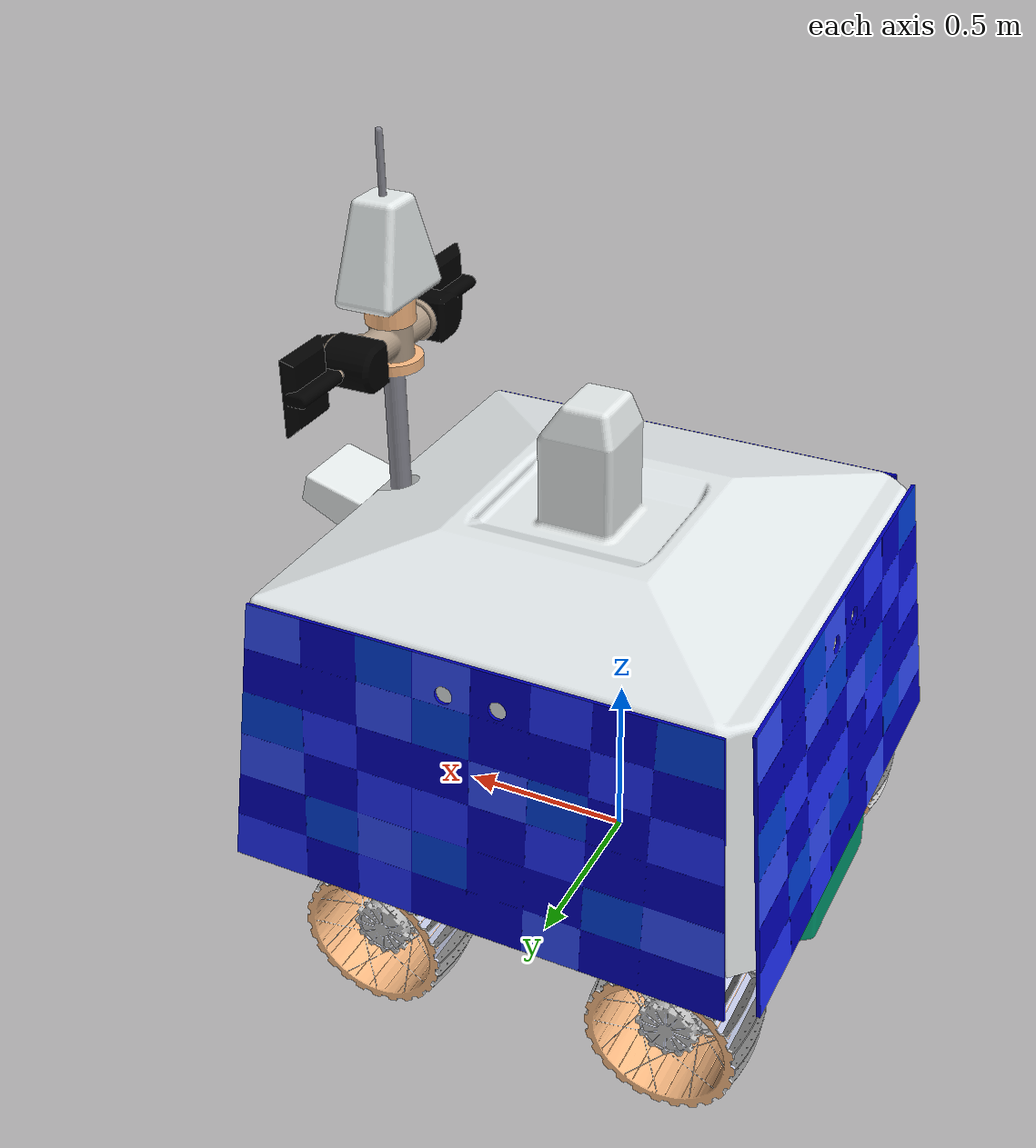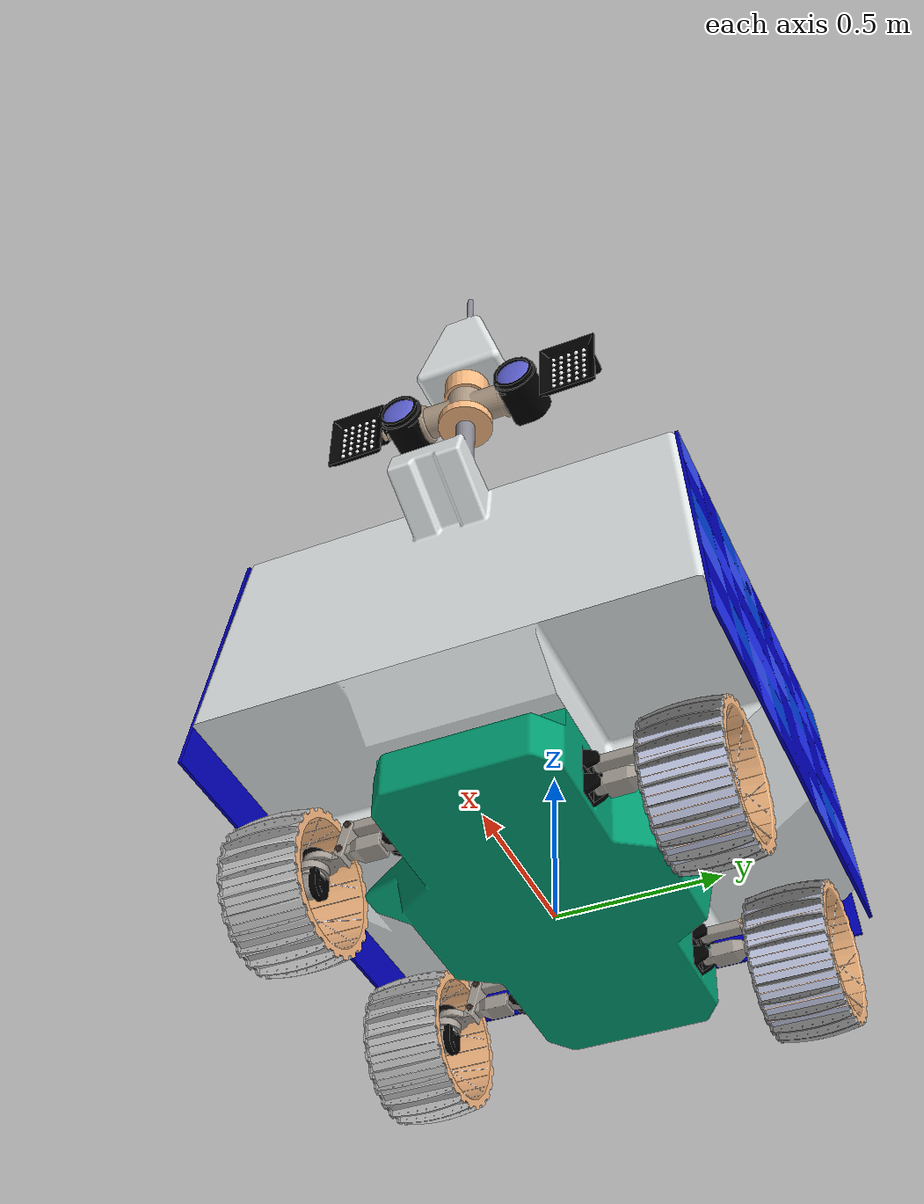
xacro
<?xml version="1.0"?>
<robot name="lunar_pole_exploration_rover" xmlns:xacro="http://wiki.ros.org/xacro">

    <!-- Inertia matrices -->
	<xacro:include filename="$(find simulation)/models/lunar_pole_exploration_rover/urdf/macros.xacro" />
	<!-- Robot constants and properties -->
	<xacro:include filename="$(find simulation)/models/lunar_pole_exploration_rover/urdf/lunar_pole_exploration_rover_properties.xacro" />
	<!-- Gazebo aspects of the robot -->
	<xacro:include filename="$(find simulation)/models/lunar_pole_exploration_rover/urdf/lunar_pole_exploration_rover.gazebo" />
	<!-- Chasis -->
	<xacro:include filename="$(find simulation)/models/lunar_pole_exploration_rover/urdf/chassis.xacro" />
	<!-- Wheel Groups -->
	<xacro:include filename="$(find simulation)/models/lunar_pole_exploration_rover/urdf/wheel.xacro" />
	<xacro:include filename="$(find simulation)/models/lunar_pole_exploration_rover/urdf/wheel_assembly.xacro" />
	<!-- Mast -->
	<xacro:include filename="$(find simulation)/models/lunar_pole_exploration_rover/urdf/mast_head.xacro" />

	<xacro:chassis_body/>
	<xacro:wheel_assembly
        placement="front"
        side="left"
        tX="1"
        tY="1"/>
	<xacro:wheel_assembly
        placement="rear"
        side="left"
        tX="-1"
        tY="1"/>
	<xacro:wheel_assembly
        placement="front"
        side="right"
        tX="1"
        tY="-1"/>
	<xacro:wheel_assembly
        placement="rear"
        side="right"
        tX="-1"
        tY="-1"/>
	<xacro:mast_head/>

</robot>

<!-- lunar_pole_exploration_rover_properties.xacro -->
<robot xmlns:xacro="http://wiki.ros.org/xacro">

	<!-- Constants -->
	<xacro:property name="PI" value="3.1415926535897931"/>

	<!-- Scaling -->
	<xacro:property name="scale_XYZ" value="1.0"/>

	<!-- Chassis properties -->
	<xacro:property name="chassisMass" value="250.0"/>
	<xacro:property name="chassisHeight" value="0.207"/>
	<xacro:property name="chassisLength" value="1.380"/>
	<xacro:property name="chassisWidth" value="1.200"/>

	<!-- Body properties -->
	<xacro:property name="bodyMass" value="100.0"/>
	<xacro:property name="bodyHeight" value="0.900"/>
	<xacro:property name="bodyLength" value="1.525"/>
	<xacro:property name="bodyWidth" value="1.525"/>
	<xacro:property name="solarPanelMass" value="1.0"/>
	<xacro:property name="solarPanelHeight" value="0.001"/>
	<xacro:property name="solarPanelLength" value="0.800"/>
	<xacro:property name="solarPanelWidth" value="1.450"/>

	<!-- Wheel Assembly -->
	<xacro:property name="suspensionMass" value="1.5"/>
	<xacro:property name="suspensionWidth" value="0.090"/>
	<xacro:property name="suspensionLength" value="0.345"/>
	<xacro:property name="suspensionHeight" value="0.145"/>
	<xacro:property name="suspensionComX" value="0.0"/>
	<xacro:property name="suspensionComY" value="0.09"/>
	<xacro:property name="suspensionComZ" value="-0.009"/>

	<xacro:property name="suspension_lower_limit" value="-0.0115"/>
	<xacro:property name="suspension_upper_limit" value="0.0115"/>
	<xacro:property name="suspension_damping" value="1000.0"/>
	<xacro:property name="suspension_friction" value="1000.0"/>
	<xacro:property name="suspension_stiffness" value="200000.0"/>

	<xacro:property name="axleHeight" value="0.182"/>
	<xacro:property name="axleWidth" value="0.1435"/>
	<xacro:property name="axleLength" value="0.100"/>
	<xacro:property name="axleMass" value="0.7"/>
	<xacro:property name="axleComX" value="0.0"/>
	<xacro:property name="axleComY" value="0.048"/>
	<xacro:property name="axleComZ" value="0.026"/>

	<xacro:property name="suspension_steer_limit" value="0.9"/>
	<xacro:property name="suspension_steer_effort" value="100000.0"/>
	<xacro:property name="suspension_steer_velocity" value="1000.0"/>

	<!-- Wheels properties -->
	<xacro:property name="wheelWidth" value="0.240"/>
	<xacro:property name="wheelRadius" value="0.225"/>
	<xacro:property name="wheelMass" value="1.0"/>

	<!-- Mast -->
	<xacro:property name="mastHeadMass" value="3.0"/>

	<xacro:property name="mastHeadPivotMass" value="${mastHeadMass/2}"/>
	<xacro:property name="mastHeadPivotWidth" value="0.120"/>
	<xacro:property name="mastHeadPivotLength" value="0.280"/>
	<xacro:property name="mastHeadPivotHeight" value="0.120"/>

	<xacro:property name="mastCameraMass" value="${mastHeadMass/2}"/>
	<xacro:property name="mastCameraWidth" value="0.168"/>
	<xacro:property name="mastCameraLength" value="0.520"/>
	<xacro:property name="mastCameraHeight" value="0.130"/>

	<xacro:property name="mast_camera_pan_limit" value="3.490659"/>
	<xacro:property name="mast_camera_pan_effort" value="50000.0"/>
	<xacro:property name="mast_camera_pan_velocity" value="4.0"/>

	<xacro:property name="mast_camera_tilt_limit" value="1.308997"/>
	<xacro:property name="mast_camera_tilt_effort" value="50000.0"/>
	<xacro:property name="mast_camera_tilt_velocity" value="3.0"/>

</robot>

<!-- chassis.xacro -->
<robot xmlns:xacro="http://wiki.ros.org/xacro">

  <xacro:macro name="chassis_body" params="">

    <!-- Used for fixing robot to Gazebo 'chassis' -->
	<link name="base_footprint" />
	<link name="base_link" />

	<joint name="base_footprint_to_link" type="fixed">
		<parent link="base_footprint"/>
		<child link="base_link"/>
	</joint>

	<joint name="base_to_chassis" type="fixed">
		<parent link="base_link"/>
		<child link="chassis"/>
		<origin rpy="0 0 0" xyz="0 0 0"/>
	</joint>

	<link name='chassis'>
		<collision>
			<origin xyz="0 0 0"
					rpy="0 0 0"/>
			<geometry>
				<mesh filename="package://simulation/models/lunar_pole_exploration_rover/meshes/chassis.dae" scale="${scale_XYZ} ${scale_XYZ} ${scale_XYZ}"/>
			</geometry>
		</collision>
		<visual>
			<origin xyz="0 0 0"
					rpy="0 0 0"/>
			<geometry>
				<mesh filename="package://simulation/models/lunar_pole_exploration_rover/meshes/chassis.dae" scale="${scale_XYZ} ${scale_XYZ} ${scale_XYZ}"/>
			</geometry>
		</visual>
		<inertial>
			<origin xyz="0 0 ${chassisHeight/2}"
					rpy="0 0 0"/>
			<mass value="${chassisMass}"/>
			<xacro:box_inertia
				m="${chassisMass}"
				x="${chassisWidth*scale_XYZ}"
				y="${chassisLength*scale_XYZ}"
				z="${chassisHeight*scale_XYZ}"/>
		</inertial>
	</link>

		<link name='body'>
		<collision>
			<origin xyz="0 0 0"
					rpy="0 0 0"/>
			<geometry>
				<mesh filename="package://simulation/models/lunar_pole_exploration_rover/meshes/body.dae" scale="${scale_XYZ} ${scale_XYZ} ${scale_XYZ}"/>
			</geometry>
		</collision>
		<visual>
			<origin xyz="0 0 0"
					rpy="0 0 0"/>
			<geometry>
				<mesh filename="package://simulation/models/lunar_pole_exploration_rover/meshes/body.dae" scale="${scale_XYZ} ${scale_XYZ} ${scale_XYZ}"/>
			</geometry>
		</visual>
		<inertial>
			<origin xyz="0 0 0"
					rpy="0 0 0"/>
			<mass value="${bodyMass}"/>
			<xacro:box_inertia
				m="${bodyMass}"
				x="${bodyWidth*scale_XYZ}"
				y="${bodyLength*scale_XYZ}"
				z="${bodyHeight*scale_XYZ}"/>
		</inertial>
	</link>

	<joint name="chassis_body_joint" type="fixed">
    <parent link="chassis"/>
    <child link="body"/>
    <origin xyz="0.07 0.0 0.207" rpy="0 0 0"/>
  </joint>

	<link name='left_solar_panel'>
		<collision>
			<origin xyz="0 0 0"
					rpy="0 0 0"/>
			<geometry>
				<mesh filename="package://simulation/models/lunar_pole_exploration_rover/meshes/solar_panel.dae" scale="${scale_XYZ} ${scale_XYZ} ${scale_XYZ}"/>
			</geometry>
		</collision>
		<visual>
			<origin xyz="0 0 0"
					rpy="0 0 0"/>
			<geometry>
				<mesh filename="package://simulation/models/lunar_pole_exploration_rover/meshes/solar_panel.dae" scale="${scale_XYZ} ${scale_XYZ} ${scale_XYZ}"/>
			</geometry>
		</visual>
		<inertial>
			<origin xyz="0 0 0"
					rpy="0 0 0"/>
			<mass value="${solarPanelMass}"/>
			<xacro:box_inertia
				m="${solarPanelMass}"
				x="${solarPanelWidth*scale_XYZ}"
				y="${solarPanelLength*scale_XYZ}"
				z="${solarPanelHeight*scale_XYZ}"/>
		</inertial>
	</link>

	<link name='right_solar_panel'>
		<collision>
			<origin xyz="0 0 0"
					rpy="0 0 0"/>
			<geometry>
				<mesh filename="package://simulation/models/lunar_pole_exploration_rover/meshes/solar_panel.dae" scale="${scale_XYZ} ${scale_XYZ} ${scale_XYZ}"/>
			</geometry>
		</collision>
		<visual>
			<origin xyz="0 0 0"
					rpy="0 0 0"/>
			<geometry>
				<mesh filename="package://simulation/models/lunar_pole_exploration_rover/meshes/solar_panel.dae" scale="${scale_XYZ} ${scale_XYZ} ${scale_XYZ}"/>
			</geometry>
		</visual>
		<inertial>
			<origin xyz="0 0 0"
					rpy="0 0 0"/>
			<mass value="${solarPanelMass}"/>
			<xacro:box_inertia
				m="${solarPanelMass}"
				x="${solarPanelWidth*scale_XYZ}"
				y="${solarPanelLength*scale_XYZ}"
				z="${solarPanelHeight*scale_XYZ}"/>
		</inertial>
	</link>

	<link name='rear_solar_panel'>
		<collision>
			<origin xyz="0 0 0"
					rpy="0 0 0"/>
			<geometry>
				<mesh filename="package://simulation/models/lunar_pole_exploration_rover/meshes/solar_panel.dae" scale="${scale_XYZ} ${scale_XYZ} ${scale_XYZ}"/>
			</geometry>
		</collision>
		<visual>
			<origin xyz="0 0 0"
					rpy="0 0 0"/>
			<geometry>
				<mesh filename="package://simulation/models/lunar_pole_exploration_rover/meshes/solar_panel.dae" scale="${scale_XYZ} ${scale_XYZ} ${scale_XYZ}"/>
			</geometry>
		</visual>
		<inertial>
			<origin xyz="0 0 0"
					rpy="0 0 0"/>
			<mass value="${solarPanelMass}"/>
			<xacro:box_inertia
				m="${solarPanelMass}"
				x="${solarPanelWidth*scale_XYZ}"
				y="${solarPanelLength*scale_XYZ}"
				z="${solarPanelHeight*scale_XYZ}"/>
		</inertial>
	</link>

	<!-- joint is not of fixed type to avoid "lumping" from some URDF parsers
	The joint visual need to be independant for the solar panel plugin to work -->
	<joint name="left_solar_panel_joint" type="revolute">
		<parent link="body"/>
		<child link="left_solar_panel"/>
		<origin xyz="0.0252 0.7253 0.3829" rpy="1.4673 0 ${-PI}"/>
		<axis xyz="0 0 1"/>
		<limit lower="0.0" upper="0.0" effort="1e10" velocity="0.0"/>
	</joint>

	<!-- joint is not of fixed type to avoid "lumping" from some URDF parsers
	The joint visual need to be independant for the solar panel plugin to work -->
	<joint name="right_solar_panel_joint" type="revolute">
		<parent link="body"/>
		<child link="right_solar_panel"/>
		<origin xyz="0.0252 -0.7253 0.3829" rpy="1.4673 0 0"/>
		<axis xyz="0 0 1"/>
		<limit lower="0.0" upper="0.0" effort="1e10" velocity="0.0"/>
	</joint>

	<!-- joint is not of fixed type to avoid "lumping" from some URDF parsers
	The joint visual need to be independant for the solar panel plugin to work -->
	<joint name="rear_solar_panel_joint" type="revolute">
		<parent link="body"/>
		<child link="rear_solar_panel"/>
		<origin xyz="-0.7253 0.0 0.3829" rpy="1.4673 0 ${-PI/2}"/>
		<axis xyz="0 0 1"/>
		<limit lower="0.0" upper="0.0" effort="1e10" velocity="0.0"/>
	</joint>

	<material name="camera_green">
		<color rgba="0 0.8 0 1"/>
	</material>

	<link name="aft_camera_link_left">
		<!-- Inertial for gazebo to take it into account, Put 1gr weight -->
		<inertial>
			<origin xyz="0 0 0" rpy="0 0 0"/>
			<mass value="0.001" />
			<inertia ixx="9.1875e-09" ixy="0.0" ixz="0.0" iyy="9.1875e-09" iyz="0.0" izz="1.378125e-08"/>
		</inertial>
		<visual>
			<origin rpy="0.0 0 0" xyz="0 0 0"/>
			<geometry>
				<box size="0.0005 0.0005 0.0005"/>
			</geometry>
			<material name="camera_green"/>
		</visual>
	</link>

	<gazebo reference="aft_camera_link_left">
		<material>Gazebo/Green</material>
	</gazebo>

	<joint name="aft_camera_link_left_joint" type="fixed">
		<parent link="body"/>
		<child link="aft_camera_link_left"/>
		<origin xyz="-0.705 -0.150 0.682" rpy="0 0 ${PI}"/>
	</joint>

	<link name="aft_camera_link_right">
		<!-- Inertial for gazebo to take it into account, Put 1gr weight -->
		<inertial>
			<origin xyz="0 0 0" rpy="0 0 0"/>
			<mass value="0.001" />
			<inertia ixx="9.1875e-09" ixy="0.0" ixz="0.0" iyy="9.1875e-09" iyz="0.0" izz="1.378125e-08"/>
		</inertial>
		<visual>
			<origin rpy="0.0 0 0" xyz="0 0 0"/>
			<geometry>
				<box size="0.0005 0.0005 0.0005"/>
			</geometry>
			<material name="camera_green"/>
		</visual>
	</link>

	<gazebo reference="aft_camera_link_right">
		<material>Gazebo/Green</material>
	</gazebo>

	<joint name="aft_camera_link_right_joint" type="fixed">
		<parent link="body"/>
		<child link="aft_camera_link_right"/>
		<origin xyz="-0.705 0.150 0.682" rpy="0 0 ${PI}"/>
	</joint>

	<link name="haz_camera_link_left_front">
		<!-- Inertial for gazebo to take it into account, Put 1gr weight -->
		<inertial>
			<origin xyz="0 0 0" rpy="0 0 0"/>
			<mass value="0.001" />
			<inertia ixx="9.1875e-09" ixy="0.0" ixz="0.0" iyy="9.1875e-09" iyz="0.0" izz="1.378125e-08"/>
		</inertial>
		<visual>
			<origin rpy="0.0 0 0" xyz="0 0 0"/>
			<geometry>
				<box size="0.0005 0.0005 0.0005"/>
			</geometry>
			<material name="camera_green"/>
		</visual>
	</link>

	<gazebo reference="haz_camera_link_left_front">
		<material>Gazebo/Green</material>
	</gazebo>

	<joint name="haz_camera_link_left_front_joint" type="fixed">
		<parent link="body"/>
		<child link="haz_camera_link_left_front"/>
		<origin xyz="0.270 0.310 0.110" rpy="0 ${PI/4} ${PI/4}"/>
	</joint>

	<link name="haz_camera_link_left_rear">
		<!-- Inertial for gazebo to take it into account, Put 1gr weight -->
		<inertial>
			<origin xyz="0 0 0" rpy="0 0 0"/>
			<mass value="0.001" />
			<inertia ixx="9.1875e-09" ixy="0.0" ixz="0.0" iyy="9.1875e-09" iyz="0.0" izz="1.378125e-08"/>
		</inertial>
		<visual>
			<origin rpy="0.0 0 0" xyz="0 0 0"/>
			<geometry>
				<box size="0.0005 0.0005 0.0005"/>
			</geometry>
			<material name="camera_green"/>
		</visual>
	</link>

	<gazebo reference="haz_camera_link_left_rear">
		<material>Gazebo/Green</material>
	</gazebo>

	<joint name="haz_camera_link_left_rear_joint" type="fixed">
		<parent link="body"/>
		<child link="haz_camera_link_left_rear"/>
		<origin xyz="-0.270 0.310 0.110" rpy="0 ${PI/4} ${PI/4 + PI/2}"/>
	</joint>

		<link name="haz_camera_link_right_front">
		<!-- Inertial for gazebo to take it into account, Put 1gr weight -->
		<inertial>
			<origin xyz="0 0 0" rpy="0 0 0"/>
			<mass value="0.001" />
			<inertia ixx="9.1875e-09" ixy="0.0" ixz="0.0" iyy="9.1875e-09" iyz="0.0" izz="1.378125e-08"/>
		</inertial>
		<visual>
			<origin rpy="0.0 0 0" xyz="0 0 0"/>
			<geometry>
				<box size="0.0005 0.0005 0.0005"/>
			</geometry>
			<material name="camera_green"/>
		</visual>
	</link>

	<gazebo reference="haz_camera_link_right_front">
		<material>Gazebo/Green</material>
	</gazebo>

	<joint name="haz_camera_link_right_front_joint" type="fixed">
		<parent link="body"/>
		<child link="haz_camera_link_right_front"/>
		<origin xyz="0.270 -0.310 0.110" rpy="0 ${PI/4} ${-PI/4}"/>
	</joint>

		<link name="haz_camera_link_right_rear">
		<!-- Inertial for gazebo to take it into account, Put 1gr weight -->
		<inertial>
			<origin xyz="0 0 0" rpy="0 0 0"/>
			<mass value="0.001" />
			<inertia ixx="9.1875e-09" ixy="0.0" ixz="0.0" iyy="9.1875e-09" iyz="0.0" izz="1.378125e-08"/>
		</inertial>
		<visual>
			<origin rpy="0.0 0 0" xyz="0 0 0"/>
			<geometry>
				<box size="0.0005 0.0005 0.0005"/>
			</geometry>
			<material name="camera_green"/>
		</visual>
	</link>

	<gazebo reference="haz_camera_link_right_rear">
		<material>Gazebo/Green</material>
	</gazebo>

	<joint name="haz_camera_link_right_rear_joint" type="fixed">
		<parent link="body"/>
		<child link="haz_camera_link_right_rear"/>
		<origin xyz="-0.270 -0.310 0.110" rpy="0 ${PI/4} ${-PI/4 - PI/2}"/>
	</joint>

  </xacro:macro>
</robot>

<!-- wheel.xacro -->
<robot xmlns:xacro="http://wiki.ros.org/xacro">

  <xacro:macro name="wheel" params="wheel_name wheel_conector_name side tY">
    <!-- tY is 1 if left side, -1 if right side -->
    <link name='${wheel_name}'>
			<collision>
				<origin xyz="0 0 0"
						rpy="1.57 0 0"/>
				<geometry>
					<cylinder radius="${wheelRadius}" length="${wheelWidth}"/>
				</geometry>
				<surface>
					<friction>
						<ode>
							<mu>1.0</mu>
							<mu2>1.0</mu2>
						</ode>
					</friction>
				</surface>
			</collision>

			<visual>
				<origin xyz="0 0 0"
						rpy="0 0 0"/>
				<geometry>
					<mesh filename="package://simulation/models/lunar_pole_exploration_rover/meshes/wheel_${side}.dae" scale="${scale_XYZ} ${scale_XYZ} ${scale_XYZ}"/>
				</geometry>
			</visual>

			<inertial>
				<origin xyz="0 0 0"
						rpy="0 0 0"/>
				<mass value="${wheelMass}"/>
				<xacro:cylinder_inertia
					m="${wheelMass}"
					r="${wheelRadius*scale_XYZ}"
					h="${wheelWidth*scale_XYZ}"/>
			</inertial>
		</link>

	  <gazebo reference="${wheel_name}">
	    <kp  value="10000000.0" />
	    <kd>100.0</kd>
	    <minDepth>0.001</minDepth>
	    <maxVel>1.0</maxVel>
	  </gazebo>

	  <joint name="${wheel_name}_joint" type="continuous">
			<parent link="${wheel_conector_name}"/>
			<child link="${wheel_name}"/>
			<origin xyz="0 ${tY*0.076} 0" rpy="0 0 0"/>
			<limit effort="10000.0" velocity="100.0"/>
	        <axis xyz="0 1 0"/>
	        <dynamics damping="0.0" friction="0.0"/>
		</joint>

    <transmission name="${wheel_name}_trans">
      <type>transmission_interface/SimpleTransmission</type>
      <joint name="${wheel_name}_joint">
        <hardwareInterface>hardware_interface/EffortJointInterface</hardwareInterface>
      </joint>
      <actuator name="${wheel_name}Motor">
        <hardwareInterface>hardware_interface/EffortJointInterface</hardwareInterface>
        <mechanicalReduction>1</mechanicalReduction>
      </actuator>
    </transmission>

  </xacro:macro>

</robot>

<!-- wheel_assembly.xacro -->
<robot xmlns:xacro="http://wiki.ros.org/xacro">

  <xacro:macro name="wheel_assembly" params="placement side tX tY">
    <!-- placement is either or rear -->
    <!-- side is either left side or right side -->
    <!-- tX is either 1 for front or -1 for rear -->
    <!-- tY is either 1 for ${side} side or -1 for right side -->

    <link name='${placement}_${side}_suspension'>
        <collision>
          <origin xyz="0 0 0"
              rpy="0 0 0"/>
          <geometry>
            <mesh filename="package://simulation/models/lunar_pole_exploration_rover/meshes/suspension_${side}.dae" scale="${scale_XYZ} ${scale_XYZ} ${scale_XYZ}"/>
          </geometry>
        </collision>
        <visual>
          <origin xyz="0 0 0"
              rpy="0 0 0"/>
          <geometry>
            <mesh filename="package://simulation/models/lunar_pole_exploration_rover/meshes/suspension_${side}.dae" scale="${scale_XYZ} ${scale_XYZ} ${scale_XYZ}"/>
          </geometry>
        </visual>
        <inertial>
          <origin xyz="${tY*suspensionComX*scale_XYZ} ${tY*suspensionComY*scale_XYZ} ${tY*suspensionComZ*scale_XYZ}"
              rpy="0 0 0"/>
          <mass value="${suspensionMass}"/>
          <xacro:box_inertia
            m="${suspensionMass}"
            x="${suspensionWidth*scale_XYZ}"
            y="${suspensionLength*scale_XYZ}"
            z="${suspensionHeight*scale_XYZ}"/>
        </inertial>
      </link>

      <joint name="${placement}_${side}_suspension_joint" type="prismatic">
        <parent link="chassis"/>
        <child link="${placement}_${side}_suspension"/>
        <origin xyz="${tX*0.435} ${tY*0.255} 0.09" rpy="0 0 0"/>
        <limit lower="${suspension_lower_limit}" upper="${suspension_upper_limit}" effort="10000.0" velocity="100.0"/>
        <axis xyz="0 0 1"/>
        <dynamics damping="${suspension_damping}" friction="${suspension_friction}" spring_stiffness="${suspension_stiffness}"/>
      </joint>

      <link name='${placement}_${side}_wheel_axle'>
        <collision>
          <origin xyz="0 0 0"
              rpy="0 0 0"/>
          <geometry>
            <mesh filename="package://simulation/models/lunar_pole_exploration_rover/meshes/wheel_axle_${side}.dae" scale="${scale_XYZ} ${scale_XYZ} ${scale_XYZ}"/>
          </geometry>
        </collision>
        <visual>
          <origin xyz="0 0 0"
              rpy="0 0 0"/>
          <geometry>
            <mesh filename="package://simulation/models/lunar_pole_exploration_rover/meshes/wheel_axle_${side}.dae" scale="${scale_XYZ} ${scale_XYZ} ${scale_XYZ}"/>
          </geometry>
        </visual>

        <inertial>
          <origin xyz="${axleComX*scale_XYZ} ${axleComY*scale_XYZ} ${axleComZ*scale_XYZ}"
              rpy="0 0 0"/>
          <mass value="${axleMass}"/>
          <xacro:box_inertia
            m="${axleMass}"
            x="${axleWidth*scale_XYZ}"
            y="${axleLength*scale_XYZ}"
            z="${axleHeight*scale_XYZ}"/>
        </inertial>
      </link>

      <joint name="${placement}_${side}_wheel_axle_joint" type="revolute">
        <parent link="${placement}_${side}_suspension"/>
        <child link="${placement}_${side}_wheel_axle"/>
        <origin xyz="0.0 ${tY*0.27} -0.1265" rpy="0 0 0"/>
        <axis xyz="0 0 1"/>
        <limit lower="${-suspension_steer_limit}" upper="${suspension_steer_limit}" effort="${suspension_steer_effort}" velocity="${suspension_steer_velocity}"/>
      </joint>

      <transmission name="${placement}_${side}_wheel_steer_trans">
        <type>transmission_interface/SimpleTransmission</type>
        <joint name="${placement}_${side}_wheel_axle_joint">
          <hardwareInterface>hardware_interface/EffortJointInterface</hardwareInterface>
        </joint>
        <actuator name="${placement}_${side}_wheel_steerMotor">
          <hardwareInterface>hardware_interface/EffortJointInterface</hardwareInterface>
          <mechanicalReduction>1</mechanicalReduction>
        </actuator>
      </transmission>

      <xacro:wheel
        wheel_name="${placement}_${side}_wheel"
        wheel_conector_name="${placement}_${side}_wheel_axle"
        side="${side}"
        tY="${tY}"/>

  </xacro:macro>

</robot>

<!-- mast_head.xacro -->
<robot xmlns:xacro="http://wiki.ros.org/xacro">
    <xacro:macro name="mast_head" params="">
        <link name='mast_head_pivot'>
            <collision>
                <origin xyz="0 0 0"
                    rpy="0 0 0"/>
                <geometry>
                    <mesh filename="package://simulation/models/lunar_pole_exploration_rover/meshes/mast_head_pivot.dae" scale="${scale_XYZ} ${scale_XYZ} ${scale_XYZ}"/>
                </geometry>
            </collision>
            <visual>
                <origin xyz="0 0 0"
                    rpy="0 0 0"/>
                <geometry>
                    <mesh filename="package://simulation/models/lunar_pole_exploration_rover/meshes/mast_head_pivot.dae" scale="${scale_XYZ} ${scale_XYZ} ${scale_XYZ}"/>
                </geometry>
            </visual>
            <inertial>
                <origin xyz="0 0 0"
                    rpy="0 0 0"/>
                <mass value="${mastHeadPivotMass}"/>
                <xacro:box_inertia
                    m="${mastHeadPivotMass}"
                    x="${mastHeadPivotWidth*scale_XYZ}"
                    y="${mastHeadPivotLength*scale_XYZ}"
                 z="${mastHeadPivotHeight*scale_XYZ}"/>
            </inertial>
        </link>

        <joint name="mast_head_pivot_joint" type="revolute">
            <parent link="body"/>
            <child link="mast_head_pivot"/>
            <origin xyz="0.630 0.0 1.2535" rpy="0 0 0"/>
            <axis xyz="0 0 1"/>
            <limit lower="${-mast_camera_pan_limit}" upper="${mast_camera_pan_limit}" effort="${mast_camera_pan_effort}" velocity="${mast_camera_pan_velocity}"/>
        </joint>

        <transmission name="mast_camera_pan_trans">
            <type>transmission_interface/SimpleTransmission</type>
            <joint name="mast_head_pivot_joint">
                <hardwareInterface>hardware_interface/EffortJointInterface</hardwareInterface>
            </joint>
            <actuator name="mast_cameraPanMotor">
                <hardwareInterface>hardware_interface/EffortJointInterface</hardwareInterface>
                <mechanicalReduction>1</mechanicalReduction>
            </actuator>
        </transmission>

        <link name='mast_camera'>
            <collision>
                <origin xyz="0 0 0"
                    rpy="0 0 0"/>
                <geometry>
                    <mesh filename="package://simulation/models/lunar_pole_exploration_rover/meshes/mast_camera.dae" scale="${scale_XYZ} ${scale_XYZ} ${scale_XYZ}"/>
                </geometry>
            </collision>
            <visual>
                <origin xyz="0 0 0"
                    rpy="0 0 0"/>
                <geometry>
                    <mesh filename="package://simulation/models/lunar_pole_exploration_rover/meshes/mast_camera.dae" scale="${scale_XYZ} ${scale_XYZ} ${scale_XYZ}"/>
                </geometry>
            </visual>
            <inertial>
                <origin xyz="0 0 0"
                    rpy="0 0 0"/>
                <mass value="${mastCameraMass}"/>
                <xacro:box_inertia
                    m="${mastCameraMass}"
                    x="${mastCameraWidth*scale_XYZ}"
                    y="${mastCameraLength*scale_XYZ}"
                    z="${mastCameraHeight*scale_XYZ}"/>
            </inertial>
        </link>

        <joint name="mast_camera_joint" type="revolute">
            <parent link="mast_head_pivot"/>
            <child link="mast_camera"/>
            <origin xyz="0 0 0" rpy="0 0 0"/>
            <axis xyz="0 1 0"/>
            <limit lower="${-mast_camera_tilt_limit}" upper="${mast_camera_tilt_limit}" effort="${mast_camera_tilt_effort}" velocity="${mast_camera_tilt_velocity}"/>
        </joint>

        <transmission name="mast_camera_tilt_trans">
            <type>transmission_interface/SimpleTransmission</type>
            <joint name="mast_camera_joint">
                <hardwareInterface>hardware_interface/EffortJointInterface</hardwareInterface>
            </joint>
            <actuator name="mast_camera_tiltMotor">
                <hardwareInterface>hardware_interface/EffortJointInterface</hardwareInterface>
                <mechanicalReduction>1</mechanicalReduction>
            </actuator>
        </transmission>

        <material name="green">
            <color rgba="0 0.8 0 1"/>
        </material>

        <link name="nav_camera_link_left">
            <!-- Inertial for gazebo to take it into account, Put 1gr weight -->
            <inertial>
                <origin xyz="0 0 0" rpy="0 0 0"/>
                <mass value="0.001" />
                <inertia ixx="9.1875e-09" ixy="0.0" ixz="0.0" iyy="9.1875e-09" iyz="0.0" izz="1.378125e-08"/>
            </inertial>
            <visual>
                <origin rpy="0.0 0 0" xyz="0 0 0"/>
                <geometry>
                    <box size="0.0005 0.0005 0.0005"/>
                </geometry>
                <material name="green"/>
            </visual>
        </link>

        <gazebo reference="nav_camera_link_left">
            <material>Gazebo/Green</material>
        </gazebo>

        <joint name="nav_camera_link_left_joint" type="fixed">
            <parent link="mast_camera"/>
            <child link="nav_camera_link_left"/>
            <origin xyz="0.150 0.190 0.0" rpy="0 0 0"/>
        </joint>

        <link name="nav_camera_link_right">
            <!-- Inertial for gazebo to take it into account, Put 1gr weight -->
            <inertial>
                <origin xyz="0 0 0" rpy="0 0 0"/>
                <mass value="0.001" />
                <inertia ixx="9.1875e-09" ixy="0.0" ixz="0.0" iyy="9.1875e-09" iyz="0.0" izz="1.378125e-08"/>
            </inertial>
            <visual>
                <origin rpy="0.0 0 0" xyz="0 0 0"/>
                <geometry>
                    <box size="0.0005 0.0005 0.0005"/>
                </geometry>
                <material name="green"/>
            </visual>
        </link>

        <gazebo reference="nav_camera_link_right">
            <material>Gazebo/Green</material>
        </gazebo>

        <joint name="nav_camera_link_right_joint" type="fixed">
            <parent link="mast_camera"/>
            <child link="nav_camera_link_right"/>
            <origin xyz="0.150 -0.190 0.0" rpy="0 0 0"/>
        </joint>

    </xacro:macro>
</robot>
